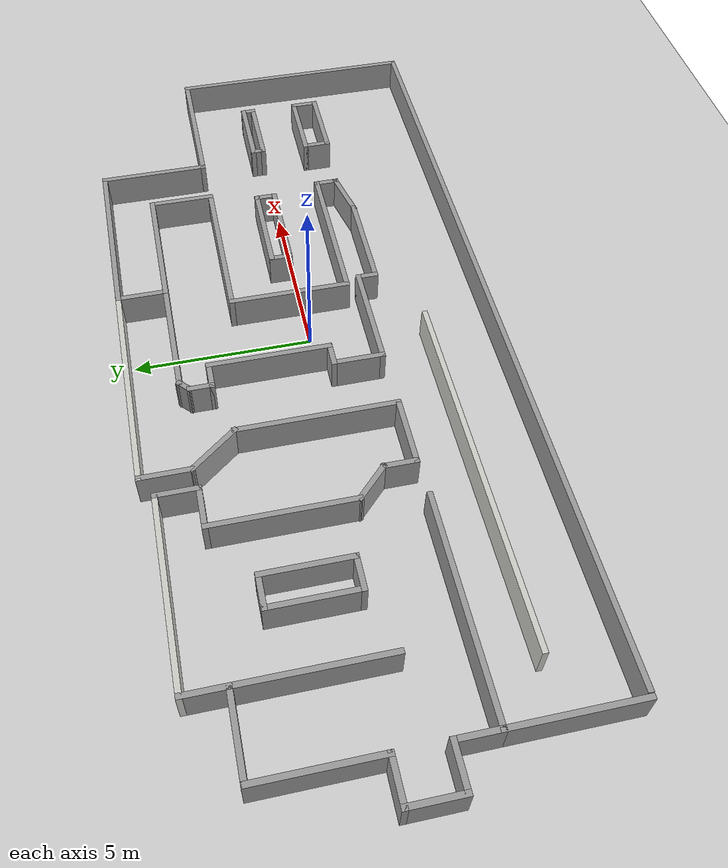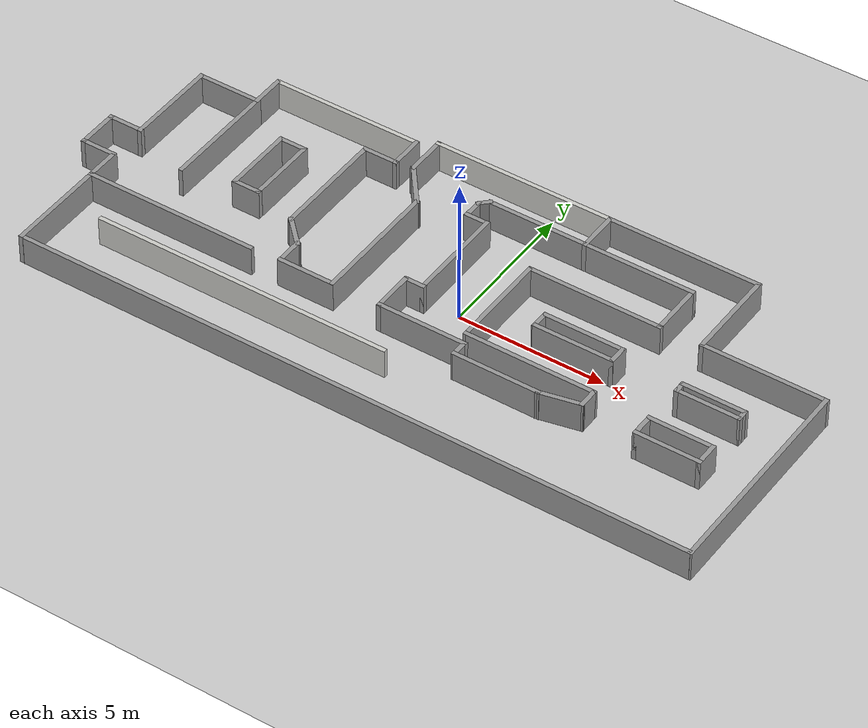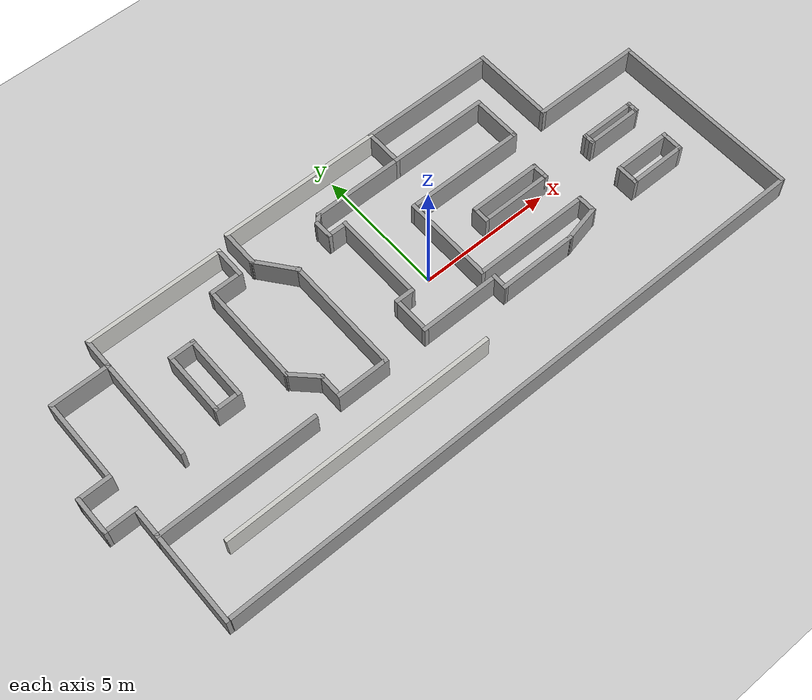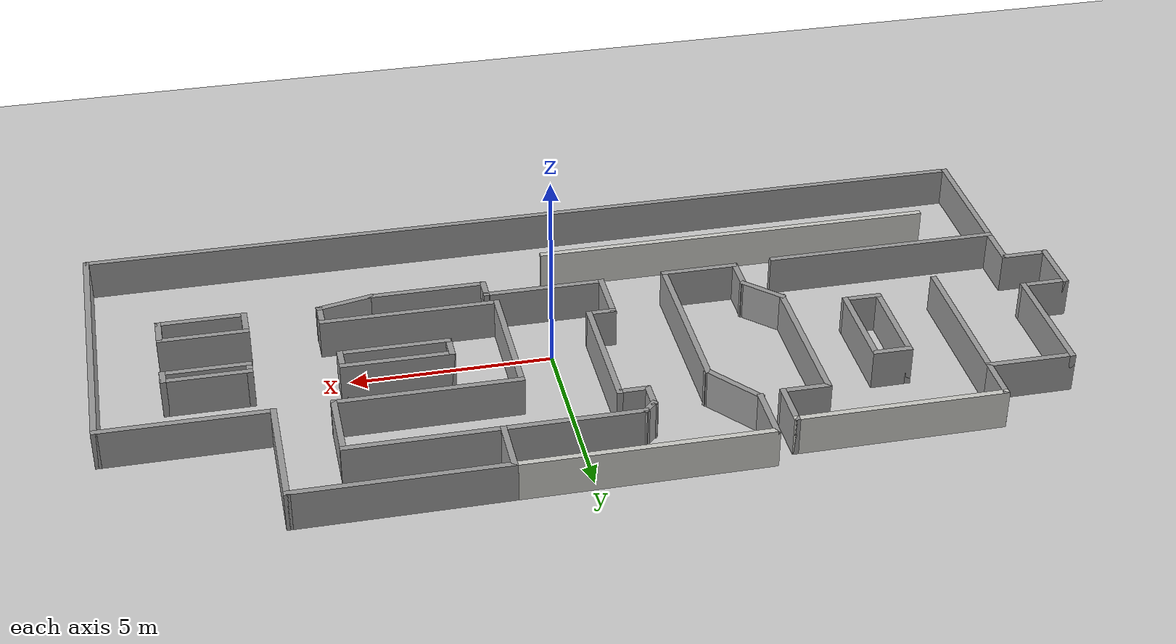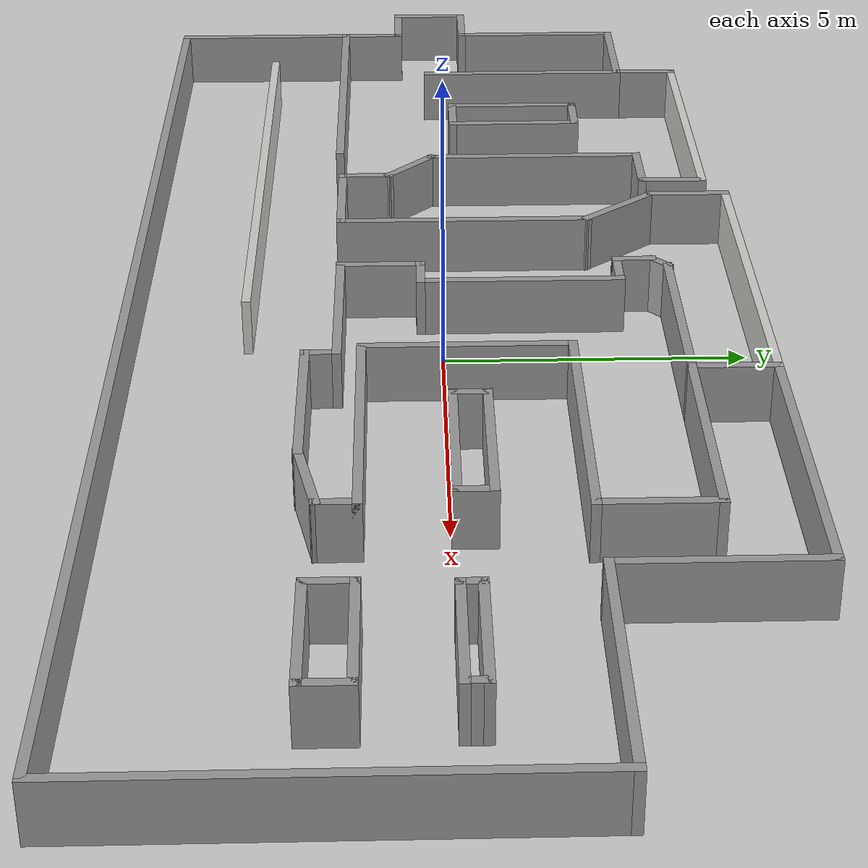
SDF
<sdf version="1.7">
 <world name="default">
  <model name="ground_plane">
   <static>1</static>
   <link name="link">
    <collision name="collision">
     <geometry><plane><normal>0 0 1</normal><size>100 100</size></plane></geometry>
     <surface><friction><ode><mu>100</mu><mu2>50</mu2></ode></friction></surface>
    </collision>
    <visual name="visual">
     <cast_shadows>0</cast_shadows>
     <geometry><plane><normal>0 0 1</normal><size>100 100</size></plane></geometry>
     <material>
      <script><uri>file://media/materials/scripts/gazebo.material</uri><name>Gazebo/Grey</name></script>
     </material>
    </visual>
   </link>
  </model>
  <model name="schedule_map">
   <pose>-1.00 0 -0.76 0 -0 0</pose>
   <link name="Wall_100">
    <collision name="Wall_100_Collision">
     <geometry><box><size>4.25 0.15 1.00</size></box></geometry>
     <pose>0 0 1.25 0 -0 0</pose>
    </collision>
    <visual name="Wall_100_Visual">
     <pose>0 0 1.25 0 -0 0</pose>
     <geometry><box><size>4.25 0.15 1.00</size></box></geometry>
     <material>
      <script><uri>file://media/materials/scripts/gazebo.material</uri><name>Gazebo/Grey</name></script>
      <ambient>1 1 1 1</ambient>
     </material>
     <meta><layer>0</layer></meta>
    </visual>
    <pose>10.0375 2.07738 0 0 -0 0.000118</pose>
   </link>
   <link name="Wall_101">
    <collision name="Wall_101_Collision">
     <geometry><box><size>7.4 0.15 1.00</size></box></geometry>
     <pose>0 0 1.25 0 -0 0</pose>
    </collision>
    <visual name="Wall_101_Visual">
     <pose>0 0 1.25 0 -0 0</pose>
     <geometry><box><size>7.4 0.15 1.00</size></box></geometry>
     <material>
      <script><uri>file://media/materials/scripts/gazebo.material</uri><name>Gazebo/Grey</name></script>
      <ambient>1 1 1 1</ambient>
     </material>
     <meta><layer>0</layer></meta>
    </visual>
    <pose>12.0872 -1.54738 0 0 -0 -1.5708</pose>
   </link>
   <link name="Wall_103">
    <collision name="Wall_103_Collision">
     <geometry><box><size>3.84125 0.15 1.00</size></box></geometry>
     <pose>0 0 1.25 0 -0 0</pose>
    </collision>
    <visual name="Wall_103_Visual">
     <pose>0 0 1.25 0 -0 0</pose>
     <geometry><box><size>3.84125 0.15 1.00</size></box></geometry>
     <material>
      <script><uri>file://media/materials/scripts/gazebo.material</uri><name>Gazebo/Grey</name></script>
      <ambient>1 1 1 1</ambient>
     </material>
     <meta><layer>0</layer></meta>
    </visual>
    <pose>4.73334 3.82714 0 0 -0 0</pose>
   </link>
   <link name="Wall_106">
    <collision name="Wall_106_Collision">
     <geometry><box><size>1.95 0.15 1.00</size></box></geometry>
     <pose>0 0 1.25 0 -0 0</pose>
    </collision>
    <visual name="Wall_106_Visual">
     <pose>0 0 1.25 0 -0 0</pose>
     <geometry><box><size>1.95 0.15 1.00</size></box></geometry>
     <material>
      <script><uri>file://media/materials/scripts/gazebo.material</uri><name>Gazebo/Grey</name></script>
      <ambient>1 1 1 1</ambient>
     </material>
     <meta><layer>0</layer></meta>
    </visual>
    <pose>6.57896 2.92713 0 0 -0 -1.5708</pose>
   </link>
   <link name="Wall_108">
    <collision name="Wall_108_Collision">
     <geometry><box><size>4.59761 0.15 1.00</size></box></geometry>
     <pose>0 0 1.25 0 -0 0</pose>
    </collision>
    <visual name="Wall_108_Visual">
     <pose>0 0 1.25 0 -0 0</pose>
     <geometry><box><size>4.59761 0.15 1.00</size></box></geometry>
     <material>
      <script><uri>file://media/materials/scripts/gazebo.material</uri><name>Gazebo/Grey</name></script>
      <ambient>1 1 1 1</ambient>
     </material>
     <meta><layer>0</layer></meta>
    </visual>
    <pose>4.35516 2.02713 0 0 -0 3.14159</pose>
   </link>
   <link name="Wall_109">
    <collision name="Wall_109_Collision">
     <geometry><box><size>3.5 0.15 1.00</size></box></geometry>
     <pose>0 0 1.25 0 -0 0</pose>
    </collision>
    <visual name="Wall_109_Visual">
     <pose>0 0 1.25 0 -0 0</pose>
     <geometry><box><size>3.5 0.15 1.00</size></box></geometry>
     <material>
      <script><uri>file://media/materials/scripts/gazebo.material</uri><name>Gazebo/Grey</name></script>
      <ambient>1 1 1 1</ambient>
     </material>
     <meta><layer>0</layer></meta>
    </visual>
    <pose>2.13135 0.352135 0 0 -0 -1.5708</pose>
   </link>
   <link name="Wall_110">
    <collision name="Wall_110_Collision">
     <geometry><box><size>4.5 0.15 1.00</size></box></geometry>
     <pose>0 0 1.25 0 -0 0</pose>
    </collision>
    <visual name="Wall_110_Visual">
     <pose>0 0 1.25 0 -0 0</pose>
     <geometry><box><size>4.5 0.15 1.00</size></box></geometry>
     <material>
      <script><uri>file://media/materials/scripts/gazebo.material</uri><name>Gazebo/Grey</name></script>
      <ambient>1 1 1 1</ambient>
     </material>
     <meta><layer>0</layer></meta>
    </visual>
    <pose>4.30635 -1.32286 0 0 -0 0</pose>
   </link>
   <link name="Wall_117">
    <collision name="Wall_117_Collision">
     <geometry><box><size>2.77011 0.15 1.00</size></box></geometry>
     <pose>0 0 1.25 0 -0 0</pose>
    </collision>
    <visual name="Wall_117_Visual">
     <pose>0 0 1.25 0 -0 0</pose>
     <geometry><box><size>2.77011 0.15 1.00</size></box></geometry>
     <material>
      <script><uri>file://media/materials/scripts/gazebo.material</uri><name>Gazebo/Grey</name></script>
      <ambient>1 1 1 1</ambient>
     </material>
     <meta><layer>0</layer></meta>
    </visual>
    <pose>4.899 0.621674 0 0 -0 0</pose>
   </link>
   <link name="Wall_119">
    <collision name="Wall_119_Collision">
     <geometry><box><size>0.689659 0.15 1.00</size></box></geometry>
     <pose>0 0 1.25 0 -0 0</pose>
    </collision>
    <visual name="Wall_119_Visual">
     <pose>0 0 1.25 0 -0 0</pose>
     <geometry><box><size>0.689659 0.15 1.00</size></box></geometry>
     <material>
      <script><uri>file://media/materials/scripts/gazebo.material</uri><name>Gazebo/Grey</name></script>
      <ambient>1 1 1 1</ambient>
     </material>
     <meta><layer>0</layer></meta>
    </visual>
    <pose>3.56883 0.351844 0 0 -0 -1.5708</pose>
   </link>
   <link name="Wall_120">
    <collision name="Wall_120_Collision">
     <geometry><box><size>2.77011 0.15 1.00</size></box></geometry>
     <pose>0 0 1.25 0 -0 0</pose>
    </collision>
    <visual name="Wall_120_Visual">
     <pose>0 0 1.25 0 -0 0</pose>
     <geometry><box><size>2.77011 0.15 1.00</size></box></geometry>
     <material>
      <script><uri>file://media/materials/scripts/gazebo.material</uri><name>Gazebo/Grey</name></script>
      <ambient>1 1 1 1</ambient>
     </material>
     <meta><layer>0</layer></meta>
    </visual>
    <pose>4.899 0.082015 0 0 -0 0</pose>
   </link>
   <link name="Wall_129">
    <collision name="Wall_129_Collision">
     <geometry><box><size>0.689659 0.15 1.00</size></box></geometry>
     <pose>0 0 1.25 0 -0 0</pose>
    </collision>
    <visual name="Wall_129_Visual">
     <pose>0 0 1.25 0 -0 0</pose>
     <geometry><box><size>0.689659 0.15 1.00</size></box></geometry>
     <material>
      <script><uri>file://media/materials/scripts/gazebo.material</uri><name>Gazebo/Grey</name></script>
      <ambient>1 1 1 1</ambient>
     </material>
     <meta><layer>0</layer></meta>
    </visual>
    <pose>6.20906 0.351844 0 0 -0 -1.5708</pose>
   </link>
   <link name="Wall_133">
    <collision name="Wall_133_Collision">
     <geometry><box><size>2.20052 0.15 1.00</size></box></geometry>
     <pose>0 0 1.25 0 -0 0</pose>
    </collision>
    <visual name="Wall_133_Visual">
     <pose>0 0 1.25 0 -0 0</pose>
     <geometry><box><size>2.20052 0.15 1.00</size></box></geometry>
     <material>
      <script><uri>file://media/materials/scripts/gazebo.material</uri><name>Gazebo/Grey</name></script>
      <ambient>1 1 1 1</ambient>
     </material>
     <meta><layer>0</layer></meta>
    </visual>
    <pose>9.40942 0.380295 0 0 -0 -1.6e-05</pose>
   </link>
   <link name="Wall_137">
    <collision name="Wall_137_Collision">
     <geometry><box><size>0.460093 0.15 1.00</size></box></geometry>
     <pose>0 0 1.25 0 -0 0</pose>
    </collision>
    <visual name="Wall_137_Visual">
     <pose>0 0 1.25 0 -0 0</pose>
     <geometry><box><size>0.460093 0.15 1.00</size></box></geometry>
     <material>
      <script><uri>file://media/materials/scripts/gazebo.material</uri><name>Gazebo/Grey</name></script>
      <ambient>1 1 1 1</ambient>
     </material>
     <meta><layer>0</layer></meta>
    </visual>
    <pose>8.38442 0.225579 0 0 -0 -1.57203</pose>
   </link>
   <link name="Wall_138">
    <collision name="Wall_138_Collision">
     <geometry><box><size>2.20089 0.15 1.00</size></box></geometry>
     <pose>0 0 1.25 0 -0 0</pose>
    </collision>
    <visual name="Wall_138_Visual">
     <pose>0 0 1.25 0 -0 0</pose>
     <geometry><box><size>2.20089 0.15 1.00</size></box></geometry>
     <material>
      <script><uri>file://media/materials/scripts/gazebo.material</uri><name>Gazebo/Grey</name></script>
      <ambient>1 1 1 1</ambient>
     </material>
     <meta><layer>0</layer></meta>
    </visual>
    <pose>9.40923 0.071063 0 0 -0 0.000211</pose>
   </link>
   <link name="Wall_146">
    <collision name="Wall_146_Collision">
     <geometry><box><size>2.25 0.15 1.00</size></box></geometry>
     <pose>0 0 1.25 0 -0 0</pose>
    </collision>
    <visual name="Wall_146_Visual">
     <pose>0 0 1.25 0 -0 0</pose>
     <geometry><box><size>2.25 0.15 1.00</size></box></geometry>
     <material>
      <script><uri>file://media/materials/scripts/gazebo.material</uri><name>Gazebo/Grey</name></script>
      <ambient>1 1 1 1</ambient>
     </material>
     <meta><layer>0</layer></meta>
    </visual>
    <pose>9.38135 -1.32286 0 0 -0 0</pose>
   </link>
   <link name="Wall_148">
    <collision name="Wall_148_Collision">
     <geometry><box><size>0.75 0.15 1.00</size></box></geometry>
     <pose>0 0 1.25 0 -0 0</pose>
    </collision>
    <visual name="Wall_148_Visual">
     <pose>0 0 1.25 0 -0 0</pose>
     <geometry><box><size>0.75 0.15 1.00</size></box></geometry>
     <material>
      <script><uri>file://media/materials/scripts/gazebo.material</uri><name>Gazebo/Grey</name></script>
      <ambient>1 1 1 1</ambient>
     </material>
     <meta><layer>0</layer></meta>
    </visual>
    <pose>6.48135 -1.62287 0 0 -0 -1.5708</pose>
   </link>
   <link name="Wall_149">
    <collision name="Wall_149_Collision">
     <geometry><box><size>1.49033 0.15 1.00</size></box></geometry>
     <pose>0 0 1.25 0 -0 0</pose>
    </collision>
    <visual name="Wall_149_Visual">
     <pose>0 0 1.25 0 -0 0</pose>
     <geometry><box><size>1.49033 0.15 1.00</size></box></geometry>
     <material>
      <script><uri>file://media/materials/scripts/gazebo.material</uri><name>Gazebo/Grey</name></script>
      <ambient>1 1 1 1</ambient>
     </material>
     <meta><layer>0</layer></meta>
    </visual>
    <pose>5.82679 -2.06662 0 0 -0 -2.9254</pose>
   </link>
   <link name="Wall_153">
    <collision name="Wall_153_Collision">
     <geometry><box><size>0.859205 0.15 1.00</size></box></geometry>
     <pose>0 0 1.25 0 -0 0</pose>
    </collision>
    <visual name="Wall_153_Visual">
     <pose>0 0 1.25 0 -0 0</pose>
     <geometry><box><size>0.859205 0.15 1.00</size></box></geometry>
     <material>
      <script><uri>file://media/materials/scripts/gazebo.material</uri><name>Gazebo/Grey</name></script>
      <ambient>1 1 1 1</ambient>
     </material>
     <meta><layer>0</layer></meta>
    </visual>
    <pose>8.33135 -1.67747 0 0 -0 -1.5708</pose>
   </link>
   <link name="Wall_156">
    <collision name="Wall_156_Collision">
     <geometry><box><size>0.859205 0.15 1.00</size></box></geometry>
     <pose>0 0 1.25 0 -0 0</pose>
    </collision>
    <visual name="Wall_156_Visual">
     <pose>0 0 1.25 0 -0 0</pose>
     <geometry><box><size>0.859205 0.15 1.00</size></box></geometry>
     <material>
      <script><uri>file://media/materials/scripts/gazebo.material</uri><name>Gazebo/Grey</name></script>
      <ambient>1 1 1 1</ambient>
     </material>
     <meta><layer>0</layer></meta>
    </visual>
    <pose>10.4314 -1.67747 0 0 -0 1.5708</pose>
   </link>
   <link name="Wall_158">
    <collision name="Wall_158_Collision">
     <geometry><box><size>0.459 0.15 1.00</size></box></geometry>
     <pose>0 0 1.25 0 -0 0</pose>
    </collision>
    <visual name="Wall_158_Visual">
     <pose>0 0 1.25 0 -0 0</pose>
     <geometry><box><size>0.459 0.15 1.00</size></box></geometry>
     <material>
      <script><uri>file://media/materials/scripts/gazebo.material</uri><name>Gazebo/Grey</name></script>
      <ambient>1 1 1 1</ambient>
     </material>
     <meta><layer>0</layer></meta>
    </visual>
    <pose>10.4342 0.225779 0 0 -0 -1.5708</pose>
   </link>
   <link name="Wall_16">
    <collision name="Wall_16_Collision">
     <geometry><box><size>5.25 0.15 1.00</size></box></geometry>
     <pose>0 0 1.25 0 -0 0</pose>
    </collision>
    <visual name="Wall_16_Visual">
     <pose>0 0 1.25 0 -0 0</pose>
     <geometry><box><size>5.25 0.15 1.00</size></box></geometry>
     <material>
      <script><uri>file://media/materials/scripts/gazebo.material</uri><name>Gazebo/CeilingTiled</name></script>
      <ambient>1 1 1 1</ambient>
     </material>
     <meta><layer>0</layer></meta>
    </visual>
    <pose>-6.33748 4.83519 0 0 -0 0</pose>
   </link>
   <link name="Wall_160">
    <collision name="Wall_160_Collision">
     <geometry><box><size>2.25 0.15 1.00</size></box></geometry>
     <pose>0 0 1.25 0 -0 0</pose>
    </collision>
    <visual name="Wall_160_Visual">
     <pose>0 0 1.25 0 -0 0</pose>
     <geometry><box><size>2.25 0.15 1.00</size></box></geometry>
     <material>
      <script><uri>file://media/materials/scripts/gazebo.material</uri><name>Gazebo/Grey</name></script>
      <ambient>1 1 1 1</ambient>
     </material>
     <meta><layer>0</layer></meta>
    </visual>
    <pose>9.38135 -2.03207 0 0 -0 0</pose>
   </link>
   <link name="Wall_18">
    <collision name="Wall_18_Collision">
     <geometry><box><size>1.25 0.15 1.00</size></box></geometry>
     <pose>0 0 1.25 0 -0 0</pose>
    </collision>
    <visual name="Wall_18_Visual">
     <pose>0 0 1.25 0 -0 0</pose>
     <geometry><box><size>1.25 0.15 1.00</size></box></geometry>
     <material>
      <script><uri>file://media/materials/scripts/gazebo.material</uri><name>Gazebo/Grey</name></script>
      <ambient>1 1 1 1</ambient>
     </material>
     <meta><layer>0</layer></meta>
    </visual>
    <pose>-8.88748 4.28519 0 0 -0 -1.5708</pose>
   </link>
   <link name="Wall_19">
    <collision name="Wall_19_Collision">
     <geometry><box><size>2.25 0.15 1.00</size></box></geometry>
     <pose>0 0 1.25 0 -0 0</pose>
    </collision>
    <visual name="Wall_19_Visual">
     <pose>0 0 1.25 0 -0 0</pose>
     <geometry><box><size>2.25 0.15 1.00</size></box></geometry>
     <material>
      <script><uri>file://media/materials/scripts/gazebo.material</uri><name>Gazebo/Grey</name></script>
      <ambient>1 1 1 1</ambient>
     </material>
     <meta><layer>0</layer></meta>
    </visual>
    <pose>-9.93748 3.73519 0 0 -0 3.14159</pose>
   </link>
   <link name="Wall_20">
    <collision name="Wall_20_Collision">
     <geometry><box><size>3.25 0.15 1.00</size></box></geometry>
     <pose>0 0 1.25 0 -0 0</pose>
    </collision>
    <visual name="Wall_20_Visual">
     <pose>0 0 1.25 0 -0 0</pose>
     <geometry><box><size>3.25 0.15 1.00</size></box></geometry>
     <material>
      <script><uri>file://media/materials/scripts/gazebo.material</uri><name>Gazebo/Grey</name></script>
      <ambient>1 1 1 1</ambient>
     </material>
     <meta><layer>0</layer></meta>
    </visual>
    <pose>-10.9875 2.18519 0 0 -0 -1.5708</pose>
   </link>
   <link name="Wall_21">
    <collision name="Wall_21_Collision">
     <geometry><box><size>1.25 0.15 1.00</size></box></geometry>
     <pose>0 0 1.25 0 -0 0</pose>
    </collision>
    <visual name="Wall_21_Visual">
     <pose>0 0 1.25 0 -0 0</pose>
     <geometry><box><size>1.25 0.15 1.00</size></box></geometry>
     <material>
      <script><uri>file://media/materials/scripts/gazebo.material</uri><name>Gazebo/Grey</name></script>
      <ambient>1 1 1 1</ambient>
     </material>
     <meta><layer>0</layer></meta>
    </visual>
    <pose>-11.5375 0.635191 0 0 -0 3.14159</pose>
   </link>
   <link name="Wall_22">
    <collision name="Wall_22_Collision">
     <geometry><box><size>1.5 0.15 1.00</size></box></geometry>
     <pose>0 0 1.25 0 -0 0</pose>
    </collision>
    <visual name="Wall_22_Visual">
     <pose>0 0 1.25 0 -0 0</pose>
     <geometry><box><size>1.5 0.15 1.00</size></box></geometry>
     <material>
      <script><uri>file://media/materials/scripts/gazebo.material</uri><name>Gazebo/Grey</name></script>
      <ambient>1 1 1 1</ambient>
     </material>
     <meta><layer>0</layer></meta>
    </visual>
    <pose>-12.0875 -0.039809 0 0 -0 -1.5708</pose>
   </link>
   <link name="Wall_23">
    <collision name="Wall_23_Collision">
     <geometry><box><size>1.25 0.15 1.00</size></box></geometry>
     <pose>0 0 1.25 0 -0 0</pose>
    </collision>
    <visual name="Wall_23_Visual">
     <pose>0 0 1.25 0 -0 0</pose>
     <geometry><box><size>1.25 0.15 1.00</size></box></geometry>
     <material>
      <script><uri>file://media/materials/scripts/gazebo.material</uri><name>Gazebo/Grey</name></script>
      <ambient>1 1 1 1</ambient>
     </material>
     <meta><layer>0</layer></meta>
    </visual>
    <pose>-11.5375 -0.714809 0 0 -0 0</pose>
   </link>
   <link name="Wall_24">
    <collision name="Wall_24_Collision">
     <geometry><box><size>1.25 0.15 1.00</size></box></geometry>
     <pose>0 0 1.25 0 -0 0</pose>
    </collision>
    <visual name="Wall_24_Visual">
     <pose>0 0 1.25 0 -0 0</pose>
     <geometry><box><size>1.25 0.15 1.00</size></box></geometry>
     <material>
      <script><uri>file://media/materials/scripts/gazebo.material</uri><name>Gazebo/Grey</name></script>
      <ambient>1 1 1 1</ambient>
     </material>
     <meta><layer>0</layer></meta>
    </visual>
    <pose>-10.9875 -1.26481 0 0 -0 -1.5708</pose>
   </link>
   <link name="Wall_26">
    <collision name="Wall_26_Collision">
     <geometry><box><size>6 0.15 1.00</size></box></geometry>
     <pose>0 0 1.25 0 -0 0</pose>
    </collision>
    <visual name="Wall_26_Visual">
     <pose>0 0 1.25 0 -0 0</pose>
     <geometry><box><size>6 0.15 1.00</size></box></geometry>
     <material>
      <script><uri>file://media/materials/scripts/gazebo.material</uri><name>Gazebo/Grey</name></script>
      <ambient>1 1 1 1</ambient>
     </material>
     <meta><layer>0</layer></meta>
    </visual>
    <pose>-8.06248 -1.81481 0 0 -0 0</pose>
   </link>
   <link name="Wall_29">
    <collision name="Wall_29_Collision">
     <geometry><box><size>23 0.15 1.00</size></box></geometry>
     <pose>0 0 1.25 0 -0 0</pose>
    </collision>
    <visual name="Wall_29_Visual">
     <pose>0 0 1.25 0 -0 0</pose>
     <geometry><box><size>23 0.15 1.00</size></box></geometry>
     <material>
      <script><uri>file://media/materials/scripts/gazebo.material</uri><name>Gazebo/Grey</name></script>
      <ambient>1 1 1 1</ambient>
     </material>
     <meta><layer>0</layer></meta>
    </visual>
    <pose>0.60104 -5.17713 0 0 -0 0</pose>
   </link>
   <link name="Wall_33">
    <collision name="Wall_33_Collision">
     <geometry><box><size>10.25 0.15 1.00</size></box></geometry>
     <pose>0 0 1.25 0 -0 0</pose>
    </collision>
    <visual name="Wall_33_Visual">
     <pose>0 0 1.25 0 -0 0</pose>
     <geometry><box><size>10.25 0.15 1.00</size></box></geometry>
     <material>
      <script><uri>file://media/materials/scripts/gazebo.material</uri><name>Gazebo/CeilingTiled</name></script>
      <ambient>1 1 1 1</ambient>
     </material>
     <meta><layer>0</layer></meta>
    </visual>
    <pose>-4.47277 -3.23438 0 0 -0 0</pose>
   </link>
   <link name="Wall_35">
    <collision name="Wall_35_Collision">
     <geometry><box><size>3.5 0.15 1.00</size></box></geometry>
     <pose>0 0 1.25 0 -0 0</pose>
    </collision>
    <visual name="Wall_35_Visual">
     <pose>0 0 1.25 0 -0 0</pose>
     <geometry><box><size>3.5 0.15 1.00</size></box></geometry>
     <material>
      <script><uri>file://media/materials/scripts/gazebo.material</uri><name>Gazebo/Grey</name></script>
      <ambient>1 1 1 1</ambient>
     </material>
     <meta><layer>0</layer></meta>
    </visual>
    <pose>-10.9875 -3.48981 0 0 -0 -1.5708</pose>
   </link>
   <link name="Wall_41">
    <collision name="Wall_41_Collision">
     <geometry><box><size>4 0.15 1.00</size></box></geometry>
     <pose>0 0 1.25 0 -0 0</pose>
    </collision>
    <visual name="Wall_41_Visual">
     <pose>0 0 1.25 0 -0 0</pose>
     <geometry><box><size>4 0.15 1.00</size></box></geometry>
     <material>
      <script><uri>file://media/materials/scripts/gazebo.material</uri><name>Gazebo/Grey</name></script>
      <ambient>1 1 1 1</ambient>
     </material>
     <meta><layer>0</layer></meta>
    </visual>
    <pose>-8.88748 1.81019 0 0 -0 -1.5708</pose>
   </link>
   <link name="Wall_54">
    <collision name="Wall_54_Collision">
     <geometry><box><size>1.25 0.15 1.00</size></box></geometry>
     <pose>0 0 1.25 0 -0 0</pose>
    </collision>
    <visual name="Wall_54_Visual">
     <pose>0 0 1.25 0 -0 0</pose>
     <geometry><box><size>1.25 0.15 1.00</size></box></geometry>
     <material>
      <script><uri>file://media/materials/scripts/gazebo.material</uri><name>Gazebo/Grey</name></script>
      <ambient>1 1 1 1</ambient>
     </material>
     <meta><layer>0</layer></meta>
    </visual>
    <pose>-3.78748 4.28519 0 0 -0 -1.5708</pose>
   </link>
   <link name="Wall_55">
    <collision name="Wall_55_Collision">
     <geometry><box><size>1.25 0.15 1.00</size></box></geometry>
     <pose>0 0 1.25 0 -0 0</pose>
    </collision>
    <visual name="Wall_55_Visual">
     <pose>0 0 1.25 0 -0 0</pose>
     <geometry><box><size>1.25 0.15 1.00</size></box></geometry>
     <material>
      <script><uri>file://media/materials/scripts/gazebo.material</uri><name>Gazebo/Grey</name></script>
      <ambient>1 1 1 1</ambient>
     </material>
     <meta><layer>0</layer></meta>
    </visual>
    <pose>-4.33748 3.73519 0 0 -0 3.14159</pose>
   </link>
   <link name="Wall_56">
    <collision name="Wall_56_Collision">
     <geometry><box><size>4 0.15 1.00</size></box></geometry>
     <pose>0 0 1.25 0 -0 0</pose>
    </collision>
    <visual name="Wall_56_Visual">
     <pose>0 0 1.25 0 -0 0</pose>
     <geometry><box><size>4 0.15 1.00</size></box></geometry>
     <material>
      <script><uri>file://media/materials/scripts/gazebo.material</uri><name>Gazebo/Grey</name></script>
      <ambient>1 1 1 1</ambient>
     </material>
     <meta><layer>0</layer></meta>
    </visual>
    <pose>-4.88748 1.81019 0 0 -0 -1.5708</pose>
   </link>
   <link name="Wall_57">
    <collision name="Wall_57_Collision">
     <geometry><box><size>1.25 0.15 1.00</size></box></geometry>
     <pose>0 0 1.25 0 -0 0</pose>
    </collision>
    <visual name="Wall_57_Visual">
     <pose>0 0 1.25 0 -0 0</pose>
     <geometry><box><size>1.25 0.15 1.00</size></box></geometry>
     <material>
      <script><uri>file://media/materials/scripts/gazebo.material</uri><name>Gazebo/Grey</name></script>
      <ambient>1 1 1 1</ambient>
     </material>
     <meta><layer>0</layer></meta>
    </visual>
    <pose>-4.49857 -0.503718 0 0 -0 -0.785398</pose>
   </link>
   <link name="Wall_58">
    <collision name="Wall_58_Collision">
     <geometry><box><size>1 0.15 1.00</size></box></geometry>
     <pose>0 0 1.25 0 -0 0</pose>
    </collision>
    <visual name="Wall_58_Visual">
     <pose>0 0 1.25 0 -0 0</pose>
     <geometry><box><size>1 0.15 1.00</size></box></geometry>
     <material>
      <script><uri>file://media/materials/scripts/gazebo.material</uri><name>Gazebo/Grey</name></script>
      <ambient>1 1 1 1</ambient>
     </material>
     <meta><layer>0</layer></meta>
    </visual>
    <pose>-4.10966 -1.31763 0 0 -0 -1.5708</pose>
   </link>
   <link name="Wall_59">
    <collision name="Wall_59_Collision">
     <geometry><box><size>2 0.15 1.00</size></box></geometry>
     <pose>0 0 1.25 0 -0 0</pose>
    </collision>
    <visual name="Wall_59_Visual">
     <pose>0 0 1.25 0 -0 0</pose>
     <geometry><box><size>2 0.15 1.00</size></box></geometry>
     <material>
      <script><uri>file://media/materials/scripts/gazebo.material</uri><name>Gazebo/Grey</name></script>
      <ambient>1 1 1 1</ambient>
     </material>
     <meta><layer>0</layer></meta>
    </visual>
    <pose>-3.18466 -1.74263 0 0 -0 0</pose>
   </link>
   <link name="Wall_60">
    <collision name="Wall_60_Collision">
     <geometry><box><size>4.5 0.15 1.00</size></box></geometry>
     <pose>0 0 1.25 0 -0 0</pose>
    </collision>
    <visual name="Wall_60_Visual">
     <pose>0 0 1.25 0 -0 0</pose>
     <geometry><box><size>4.5 0.15 1.00</size></box></geometry>
     <material>
      <script><uri>file://media/materials/scripts/gazebo.material</uri><name>Gazebo/Grey</name></script>
      <ambient>1 1 1 1</ambient>
     </material>
     <meta><layer>0</layer></meta>
    </visual>
    <pose>-2.25966 0.432374 0 0 -0 1.5708</pose>
   </link>
   <link name="Wall_62">
    <collision name="Wall_62_Collision">
     <geometry><box><size>1.5 0.15 1.00</size></box></geometry>
     <pose>0 0 1.25 0 -0 0</pose>
    </collision>
    <visual name="Wall_62_Visual">
     <pose>0 0 1.25 0 -0 0</pose>
     <geometry><box><size>1.5 0.15 1.00</size></box></geometry>
     <material>
      <script><uri>file://media/materials/scripts/gazebo.material</uri><name>Gazebo/Grey</name></script>
      <ambient>1 1 1 1</ambient>
     </material>
     <meta><layer>0</layer></meta>
    </visual>
    <pose>-3.21229 4.50213 0 0 -0 1.5708</pose>
   </link>
   <link name="Wall_63">
    <collision name="Wall_63_Collision">
     <geometry><box><size>6.25 0.15 1.00</size></box></geometry>
     <pose>0 0 1.25 0 -0 0</pose>
    </collision>
    <visual name="Wall_63_Visual">
     <pose>0 0 1.25 0 -0 0</pose>
     <geometry><box><size>6.25 0.15 1.00</size></box></geometry>
     <material>
      <script><uri>file://media/materials/scripts/gazebo.material</uri><name>Gazebo/CeilingTiled</name></script>
      <ambient>1 1 1 1</ambient>
     </material>
     <meta><layer>0</layer></meta>
    </visual>
    <pose>-0.162289 5.17713 0 0 -0 0</pose>
   </link>
   <link name="Wall_64">
    <collision name="Wall_64_Collision">
     <geometry><box><size>1.5 0.15 1.00</size></box></geometry>
     <pose>0 0 1.25 0 -0 0</pose>
    </collision>
    <visual name="Wall_64_Visual">
     <pose>0 0 1.25 0 -0 0</pose>
     <geometry><box><size>1.5 0.15 1.00</size></box></geometry>
     <material>
      <script><uri>file://media/materials/scripts/gazebo.material</uri><name>Gazebo/Grey</name></script>
      <ambient>1 1 1 1</ambient>
     </material>
     <meta><layer>0</layer></meta>
    </visual>
    <pose>2.88771 4.50213 0 0 -0 -1.5708</pose>
   </link>
   <link name="Wall_65">
    <collision name="Wall_65_Collision">
     <geometry><box><size>3.5 0.15 1.00</size></box></geometry>
     <pose>0 0 1.25 0 -0 0</pose>
    </collision>
    <visual name="Wall_65_Visual">
     <pose>0 0 1.25 0 -0 0</pose>
     <geometry><box><size>3.5 0.15 1.00</size></box></geometry>
     <material>
      <script><uri>file://media/materials/scripts/gazebo.material</uri><name>Gazebo/Grey</name></script>
      <ambient>1 1 1 1</ambient>
     </material>
     <meta><layer>0</layer></meta>
    </visual>
    <pose>1.21271 3.82714 0 0 -0 3.14159</pose>
   </link>
   <link name="Wall_69">
    <collision name="Wall_69_Collision">
     <geometry><box><size>1 0.15 1.00</size></box></geometry>
     <pose>0 0 1.25 0 -0 0</pose>
    </collision>
    <visual name="Wall_69_Visual">
     <pose>0 0 1.25 0 -0 0</pose>
     <geometry><box><size>1 0.15 1.00</size></box></geometry>
     <material>
      <script><uri>file://media/materials/scripts/gazebo.material</uri><name>Gazebo/Grey</name></script>
      <ambient>1 1 1 1</ambient>
     </material>
     <meta><layer>0</layer></meta>
    </visual>
    <pose>-6.82654 2.68826 0 0 -0 0</pose>
   </link>
   <link name="Wall_73">
    <collision name="Wall_73_Collision">
     <geometry><box><size>2.5 0.15 1.00</size></box></geometry>
     <pose>0 0 1.25 0 -0 0</pose>
    </collision>
    <visual name="Wall_73_Visual">
     <pose>0 0 1.25 0 -0 0</pose>
     <geometry><box><size>2.5 0.15 1.00</size></box></geometry>
     <material>
      <script><uri>file://media/materials/scripts/gazebo.material</uri><name>Gazebo/Grey</name></script>
      <ambient>1 1 1 1</ambient>
     </material>
     <meta><layer>0</layer></meta>
    </visual>
    <pose>-6.40154 1.51326 0 0 -0 -1.5708</pose>
   </link>
   <link name="Wall_74">
    <collision name="Wall_74_Collision">
     <geometry><box><size>1 0.15 1.00</size></box></geometry>
     <pose>0 0 1.25 0 -0 0</pose>
    </collision>
    <visual name="Wall_74_Visual">
     <pose>0 0 1.25 0 -0 0</pose>
     <geometry><box><size>1 0.15 1.00</size></box></geometry>
     <material>
      <script><uri>file://media/materials/scripts/gazebo.material</uri><name>Gazebo/Grey</name></script>
      <ambient>1 1 1 1</ambient>
     </material>
     <meta><layer>0</layer></meta>
    </visual>
    <pose>-6.82654 0.338258 0 0 -0 3.14159</pose>
   </link>
   <link name="Wall_75">
    <collision name="Wall_75_Collision">
     <geometry><box><size>2.5 0.15 1.00</size></box></geometry>
     <pose>0 0 1.25 0 -0 0</pose>
    </collision>
    <visual name="Wall_75_Visual">
     <pose>0 0 1.25 0 -0 0</pose>
     <geometry><box><size>2.5 0.15 1.00</size></box></geometry>
     <material>
      <script><uri>file://media/materials/scripts/gazebo.material</uri><name>Gazebo/Grey</name></script>
      <ambient>1 1 1 1</ambient>
     </material>
     <meta><layer>0</layer></meta>
    </visual>
    <pose>-7.25154 1.51326 0 0 -0 1.5708</pose>
   </link>
   <link name="Wall_78">
    <collision name="Wall_78_Collision">
     <geometry><box><size>1.69768 0.15 1.00</size></box></geometry>
     <pose>0 0 1.25 0 -0 0</pose>
    </collision>
    <visual name="Wall_78_Visual">
     <pose>0 0 1.25 0 -0 0</pose>
     <geometry><box><size>1.69768 0.15 1.00</size></box></geometry>
     <material>
      <script><uri>file://media/materials/scripts/gazebo.material</uri><name>Gazebo/Grey</name></script>
      <ambient>1 1 1 1</ambient>
     </material>
     <meta><layer>0</layer></meta>
    </visual>
    <pose>-2.73597 3.21725 0 0 -0 -0.907752</pose>
   </link>
   <link name="Wall_83">
    <collision name="Wall_83_Collision">
     <geometry><box><size>3.5 0.15 1.00</size></box></geometry>
     <pose>0 0 1.25 0 -0 0</pose>
    </collision>
    <visual name="Wall_83_Visual">
     <pose>0 0 1.25 0 -0 0</pose>
     <geometry><box><size>3.5 0.15 1.00</size></box></geometry>
     <material>
      <script><uri>file://media/materials/scripts/gazebo.material</uri><name>Gazebo/Grey</name></script>
      <ambient>1 1 1 1</ambient>
     </material>
     <meta><layer>0</layer></meta>
    </visual>
    <pose>-0.016911 1.31447 0 0 -0 -1.5708</pose>
   </link>
   <link name="Wall_85">
    <collision name="Wall_85_Collision">
     <geometry><box><size>0.5 0.15 1.00</size></box></geometry>
     <pose>0 0 1.25 0 -0 0</pose>
    </collision>
    <visual name="Wall_85_Visual">
     <pose>0 0 1.25 0 -0 0</pose>
     <geometry><box><size>0.5 0.15 1.00</size></box></geometry>
     <material>
      <script><uri>file://media/materials/scripts/gazebo.material</uri><name>Gazebo/Grey</name></script>
      <ambient>1 1 1 1</ambient>
     </material>
     <meta><layer>0</layer></meta>
    </visual>
    <pose>-0.586033 3.70339 0 0 -0 -2.35619</pose>
   </link>
   <link name="Wall_86">
    <collision name="Wall_86_Collision">
     <geometry><box><size>0.75 0.15 1.00</size></box></geometry>
     <pose>0 0 1.25 0 -0 0</pose>
    </collision>
    <visual name="Wall_86_Visual">
     <pose>0 0 1.25 0 -0 0</pose>
     <geometry><box><size>0.75 0.15 1.00</size></box></geometry>
     <material>
      <script><uri>file://media/materials/scripts/gazebo.material</uri><name>Gazebo/Grey</name></script>
      <ambient>1 1 1 1</ambient>
     </material>
     <meta><layer>0</layer></meta>
    </visual>
    <pose>-0.709776 3.27965 0 0 -0 -1.5708</pose>
   </link>
   <link name="Wall_87">
    <collision name="Wall_87_Collision">
     <geometry><box><size>0.75 0.15 1.00</size></box></geometry>
     <pose>0 0 1.25 0 -0 0</pose>
    </collision>
    <visual name="Wall_87_Visual">
     <pose>0 0 1.25 0 -0 0</pose>
     <geometry><box><size>0.75 0.15 1.00</size></box></geometry>
     <material>
      <script><uri>file://media/materials/scripts/gazebo.material</uri><name>Gazebo/Grey</name></script>
      <ambient>1 1 1 1</ambient>
     </material>
     <meta><layer>0</layer></meta>
    </visual>
    <pose>-0.409776 2.97965 0 0 -0 0</pose>
   </link>
   <link name="Wall_91">
    <collision name="Wall_91_Collision">
     <geometry><box><size>0.75 0.15 1.00</size></box></geometry>
     <pose>0 0 1.25 0 -0 0</pose>
    </collision>
    <visual name="Wall_91_Visual">
     <pose>0 0 1.25 0 -0 0</pose>
     <geometry><box><size>0.75 0.15 1.00</size></box></geometry>
     <material>
      <script><uri>file://media/materials/scripts/gazebo.material</uri><name>Gazebo/Grey</name></script>
      <ambient>1 1 1 1</ambient>
     </material>
     <meta><layer>0</layer></meta>
    </visual>
    <pose>-0.316911 -0.360528 0 0 -0 3.14159</pose>
   </link>
   <link name="Wall_92">
    <collision name="Wall_92_Collision">
     <geometry><box><size>1.5 0.15 1.00</size></box></geometry>
     <pose>0 0 1.25 0 -0 0</pose>
    </collision>
    <visual name="Wall_92_Visual">
     <pose>0 0 1.25 0 -0 0</pose>
     <geometry><box><size>1.5 0.15 1.00</size></box></geometry>
     <material>
      <script><uri>file://media/materials/scripts/gazebo.material</uri><name>Gazebo/Grey</name></script>
      <ambient>1 1 1 1</ambient>
     </material>
     <meta><layer>0</layer></meta>
    </visual>
    <pose>-0.61691 -1.03553 0 0 -0 -1.5708</pose>
   </link>
   <link name="Wall_93">
    <collision name="Wall_93_Collision">
     <geometry><box><size>3.08952 0.15 1.00</size></box></geometry>
     <pose>0 0 1.25 0 -0 0</pose>
    </collision>
    <visual name="Wall_93_Visual">
     <pose>0 0 1.25 0 -0 0</pose>
     <geometry><box><size>3.08952 0.15 1.00</size></box></geometry>
     <material>
      <script><uri>file://media/materials/scripts/gazebo.material</uri><name>Gazebo/Grey</name></script>
      <ambient>1 1 1 1</ambient>
     </material>
     <meta><layer>0</layer></meta>
    </visual>
    <pose>0.852659 -1.71045 0 0 -0 5e-05</pose>
   </link>
   <link name="Wall_94">
    <collision name="Wall_94_Collision">
     <geometry><box><size>0.65 0.15 1.00</size></box></geometry>
     <pose>0 0 1.25 0 -0 0</pose>
    </collision>
    <visual name="Wall_94_Visual">
     <pose>0 0 1.25 0 -0 0</pose>
     <geometry><box><size>0.65 0.15 1.00</size></box></geometry>
     <material>
      <script><uri>file://media/materials/scripts/gazebo.material</uri><name>Gazebo/Grey</name></script>
      <ambient>1 1 1 1</ambient>
     </material>
     <meta><layer>0</layer></meta>
    </visual>
    <pose>2.32223 -1.96038 0 0 -0 -1.5708</pose>
   </link>
   <link name="Wall_96">
    <collision name="Wall_96_Collision">
     <geometry><box><size>3 0.15 1.00</size></box></geometry>
     <pose>0 0 1.25 0 -0 0</pose>
    </collision>
    <visual name="Wall_96_Visual">
     <pose>0 0 1.25 0 -0 0</pose>
     <geometry><box><size>3 0.15 1.00</size></box></geometry>
     <material>
      <script><uri>file://media/materials/scripts/gazebo.material</uri><name>Gazebo/Grey</name></script>
      <ambient>1 1 1 1</ambient>
     </material>
     <meta><layer>0</layer></meta>
    </visual>
    <pose>3.74723 -2.21038 0 0 -0 0</pose>
   </link>
   <link name="Wall_98">
    <collision name="Wall_98_Collision">
     <geometry><box><size>5.25 0.15 1.00</size></box></geometry>
     <pose>0 0 1.25 0 -0 0</pose>
    </collision>
    <visual name="Wall_98_Visual">
     <pose>0 0 1.25 0 -0 0</pose>
     <geometry><box><size>5.25 0.15 1.00</size></box></geometry>
     <material>
      <script><uri>file://media/materials/scripts/gazebo.material</uri><name>Gazebo/Grey</name></script>
      <ambient>1 1 1 1</ambient>
     </material>
     <meta><layer>0</layer></meta>
    </visual>
    <pose>5.43771 5.17713 0 0 -0 0</pose>
   </link>
   <link name="Wall_99">
    <collision name="Wall_99_Collision">
     <geometry><box><size>3.25 0.15 1.00</size></box></geometry>
     <pose>0 0 1.25 0 -0 0</pose>
    </collision>
    <visual name="Wall_99_Visual">
     <pose>0 0 1.25 0 -0 0</pose>
     <geometry><box><size>3.25 0.15 1.00</size></box></geometry>
     <material>
      <script><uri>file://media/materials/scripts/gazebo.material</uri><name>Gazebo/Grey</name></script>
      <ambient>1 1 1 1</ambient>
     </material>
     <meta><layer>0</layer></meta>
    </visual>
    <pose>7.98771 3.62713 0 0 -0 -1.5708</pose>
   </link>
   <static>1</static>
  </model>
 </world>
</sdf>
